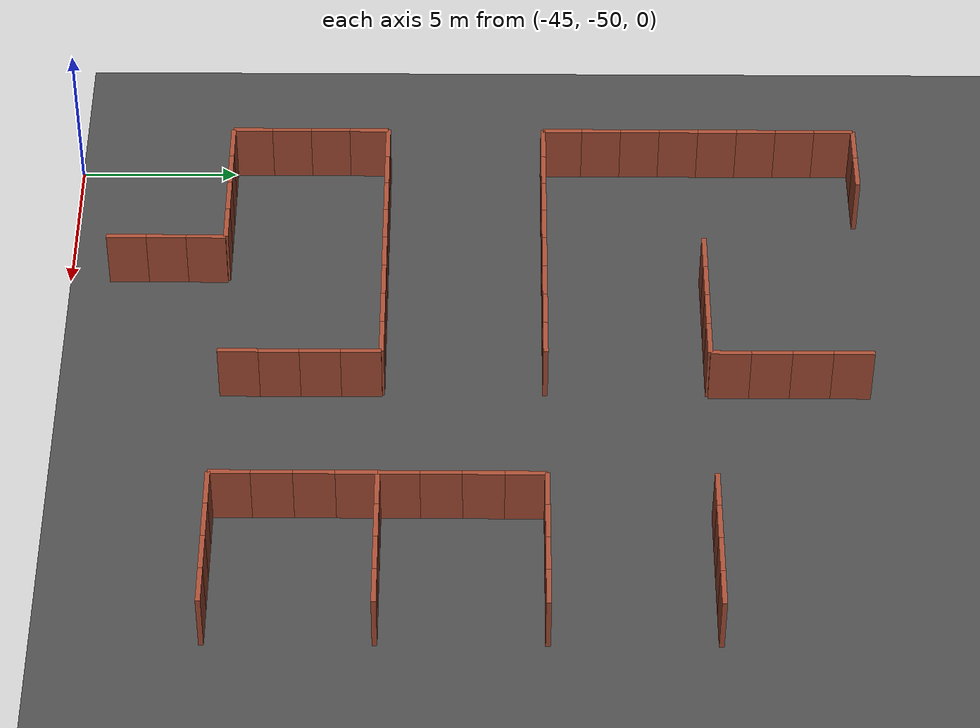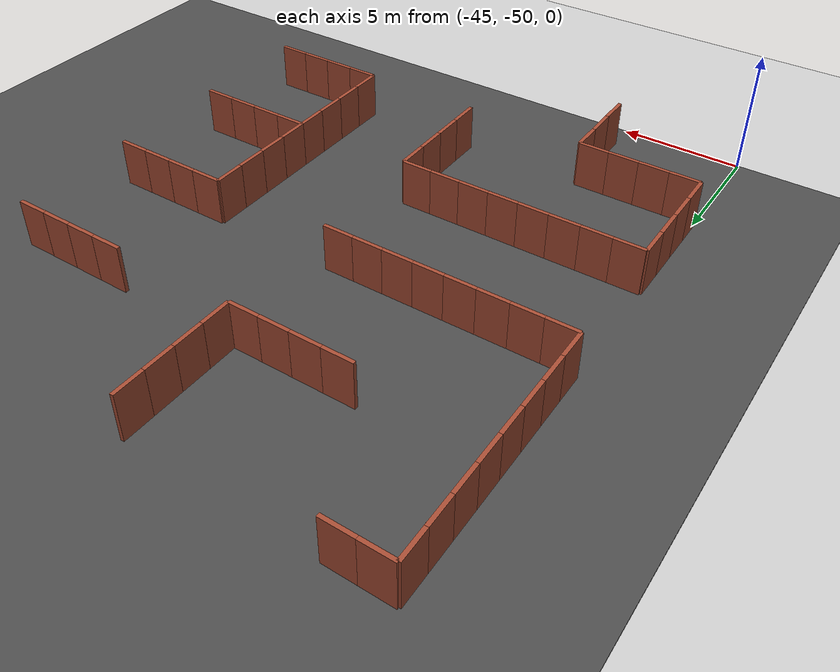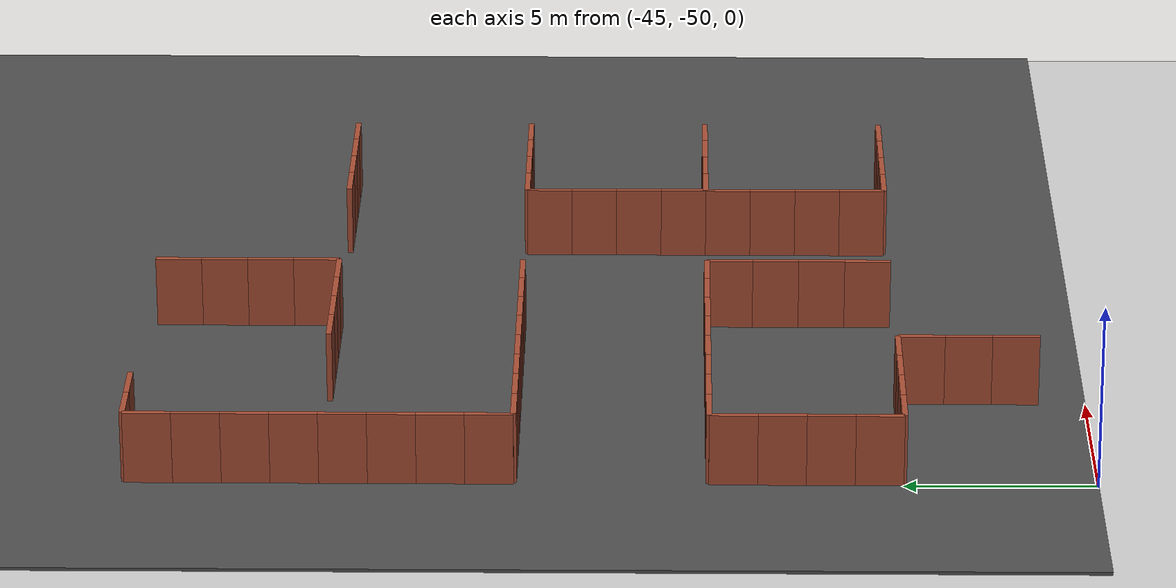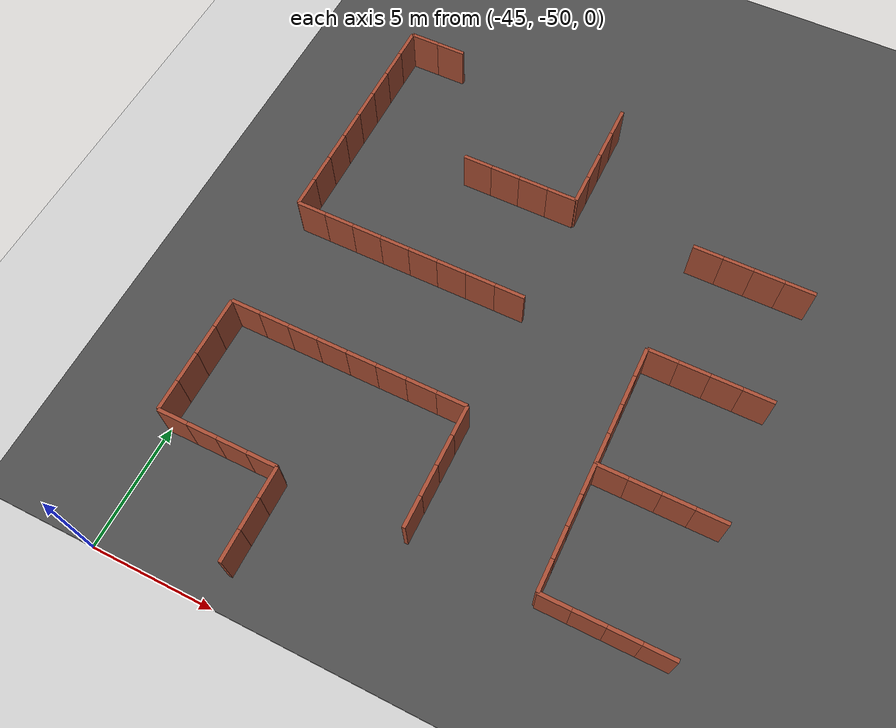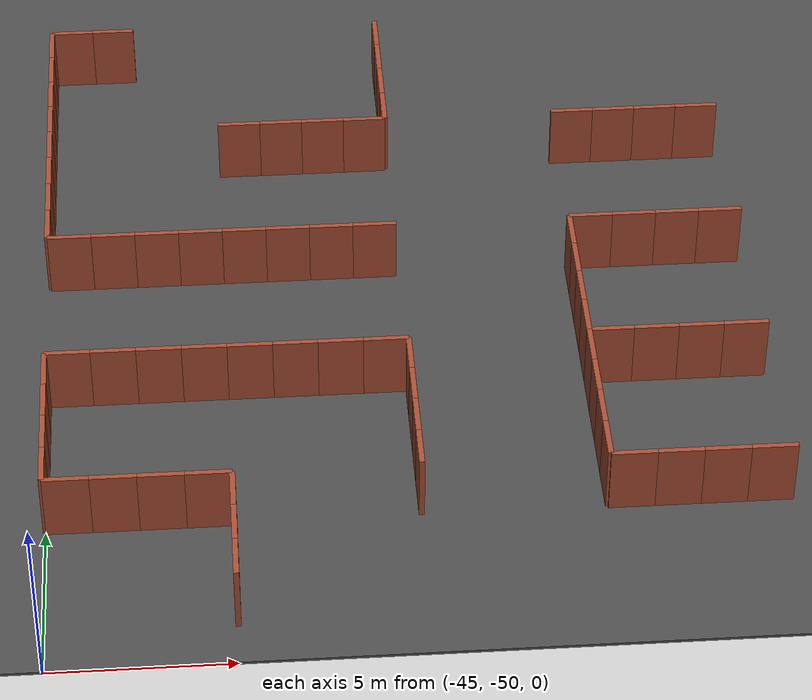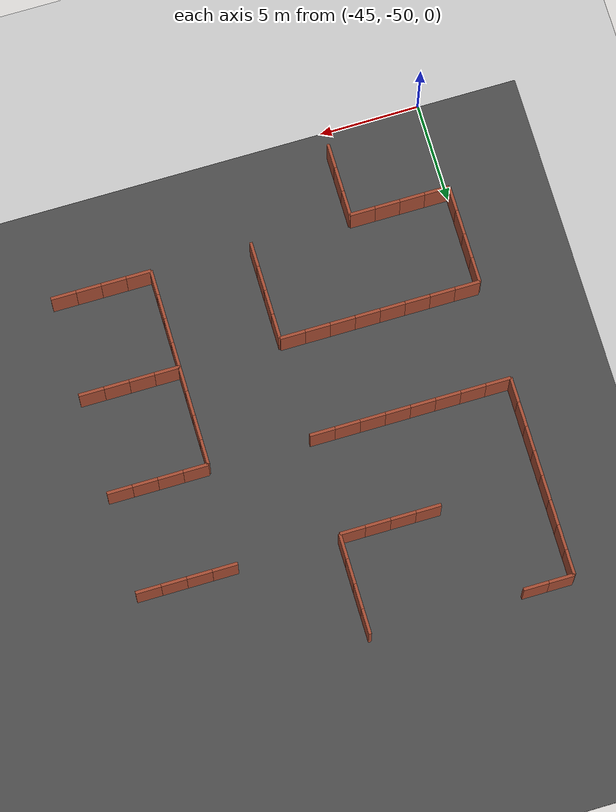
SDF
<sdf version="1.6">
 <world name="default">
  <model name="ground_plane">
   <static>1</static>
   <link name="link">
    <collision name="collision">
     <geometry><plane><normal>0 0 1</normal><size>100 100</size></plane></geometry>
     <surface><friction><ode><mu>100</mu><mu2>50</mu2></ode></friction></surface>
    </collision>
    <visual name="visual">
     <cast_shadows>0</cast_shadows>
     <geometry><plane><normal>0 0 1</normal><size>100 100</size></plane></geometry>
     <material>
      <script><uri>file://media/materials/scripts/gazebo.material</uri><name>Gazebo/Grey</name></script>
     </material>
    </visual>
   </link>
  </model>
  <model name="asphalt_plane">
   <static>1</static>
   <link name="link">
    <collision name="collision"><geometry><box><size>100 100 0.1</size></box></geometry></collision>
    <visual name="visual">
     <cast_shadows>0</cast_shadows>
     <geometry><box><size>100 100 0.1</size></box></geometry>
     <material>
      <script>
       <uri>model://asphalt_plane/materials/scripts</uri>
       <uri>model://asphalt_plane/materials/textures</uri>
       <name>vrc/asphalt</name>
      </script>
     </material>
    </visual>
   </link>
  </model>
  <model name="brick_wall_2_2_vertical1">
   <pose>-44.375 -45 0 0 -0 0</pose>
   <link name="Wall_0">
    <collision name="Wall_0_Collision">
     <geometry><box><size>1.25 0.15 2</size></box></geometry>
     <pose>0 0 1 0 -0 0</pose>
    </collision>
    <visual name="Wall_0_Visual">
     <pose>0 0 1 0 -0 0</pose>
     <geometry><box><size>1.25 0.15 2</size></box></geometry>
     <material>
      <script><uri>file://media/materials/scripts/gazebo.material</uri><name>Gazebo/Bricks</name></script>
      <ambient>1 1 1 1</ambient>
     </material>
     <meta><layer>0</layer></meta>
    </visual>
   </link>
   <static>1</static>
  </model>
  <model name="brick_wall_2_2_horizontal1">
   <pose>-45 -44.375 0 0 -0 1.5708</pose>
   <link name="Wall_0">
    <collision name="Wall_0_Collision">
     <geometry><box><size>1.25 0.15 2</size></box></geometry>
     <pose>0 0 1 0 -0 0</pose>
    </collision>
    <visual name="Wall_0_Visual">
     <pose>0 0 1 0 -0 0</pose>
     <geometry><box><size>1.25 0.15 2</size></box></geometry>
     <material>
      <script><uri>file://media/materials/scripts/gazebo.material</uri><name>Gazebo/Bricks</name></script>
      <ambient>1 1 1 1</ambient>
     </material>
     <meta><layer>0</layer></meta>
    </visual>
   </link>
   <static>1</static>
  </model>
  <model name="brick_wall_2_3_horizontal1">
   <pose>-45 -41.875 0 0 -0 1.5708</pose>
   <link name="Wall_0">
    <collision name="Wall_0_Collision">
     <geometry><box><size>1.25 0.15 2</size></box></geometry>
     <pose>0 0 1 0 -0 0</pose>
    </collision>
    <visual name="Wall_0_Visual">
     <pose>0 0 1 0 -0 0</pose>
     <geometry><box><size>1.25 0.15 2</size></box></geometry>
     <material>
      <script><uri>file://media/materials/scripts/gazebo.material</uri><name>Gazebo/Bricks</name></script>
      <ambient>1 1 1 1</ambient>
     </material>
     <meta><layer>0</layer></meta>
    </visual>
   </link>
   <static>1</static>
  </model>
  <model name="brick_wall_2_3_horizontal2">
   <pose>-45 -43.125 0 0 -0 1.5708</pose>
   <link name="Wall_0">
    <collision name="Wall_0_Collision">
     <geometry><box><size>1.25 0.15 2</size></box></geometry>
     <pose>0 0 1 0 -0 0</pose>
    </collision>
    <visual name="Wall_0_Visual">
     <pose>0 0 1 0 -0 0</pose>
     <geometry><box><size>1.25 0.15 2</size></box></geometry>
     <material>
      <script><uri>file://media/materials/scripts/gazebo.material</uri><name>Gazebo/Bricks</name></script>
      <ambient>1 1 1 1</ambient>
     </material>
     <meta><layer>0</layer></meta>
    </visual>
   </link>
   <static>1</static>
  </model>
  <model name="brick_wall_2_4_vertical1">
   <pose>-44.375 -40 0 0 -0 0</pose>
   <link name="Wall_0">
    <collision name="Wall_0_Collision">
     <geometry><box><size>1.25 0.15 2</size></box></geometry>
     <pose>0 0 1 0 -0 0</pose>
    </collision>
    <visual name="Wall_0_Visual">
     <pose>0 0 1 0 -0 0</pose>
     <geometry><box><size>1.25 0.15 2</size></box></geometry>
     <material>
      <script><uri>file://media/materials/scripts/gazebo.material</uri><name>Gazebo/Bricks</name></script>
      <ambient>1 1 1 1</ambient>
     </material>
     <meta><layer>0</layer></meta>
    </visual>
   </link>
   <static>1</static>
  </model>
  <model name="brick_wall_2_4_horizontal2">
   <pose>-45 -40.625 0 0 -0 1.5708</pose>
   <link name="Wall_0">
    <collision name="Wall_0_Collision">
     <geometry><box><size>1.25 0.15 2</size></box></geometry>
     <pose>0 0 1 0 -0 0</pose>
    </collision>
    <visual name="Wall_0_Visual">
     <pose>0 0 1 0 -0 0</pose>
     <geometry><box><size>1.25 0.15 2</size></box></geometry>
     <material>
      <script><uri>file://media/materials/scripts/gazebo.material</uri><name>Gazebo/Bricks</name></script>
      <ambient>1 1 1 1</ambient>
     </material>
     <meta><layer>0</layer></meta>
    </visual>
   </link>
   <static>1</static>
  </model>
  <model name="brick_wall_2_6_vertical1">
   <pose>-44.375 -35 0 0 -0 0</pose>
   <link name="Wall_0">
    <collision name="Wall_0_Collision">
     <geometry><box><size>1.25 0.15 2</size></box></geometry>
     <pose>0 0 1 0 -0 0</pose>
    </collision>
    <visual name="Wall_0_Visual">
     <pose>0 0 1 0 -0 0</pose>
     <geometry><box><size>1.25 0.15 2</size></box></geometry>
     <material>
      <script><uri>file://media/materials/scripts/gazebo.material</uri><name>Gazebo/Bricks</name></script>
      <ambient>1 1 1 1</ambient>
     </material>
     <meta><layer>0</layer></meta>
    </visual>
   </link>
   <static>1</static>
  </model>
  <model name="brick_wall_2_6_horizontal1">
   <pose>-45 -34.375 0 0 -0 1.5708</pose>
   <link name="Wall_0">
    <collision name="Wall_0_Collision">
     <geometry><box><size>1.25 0.15 2</size></box></geometry>
     <pose>0 0 1 0 -0 0</pose>
    </collision>
    <visual name="Wall_0_Visual">
     <pose>0 0 1 0 -0 0</pose>
     <geometry><box><size>1.25 0.15 2</size></box></geometry>
     <material>
      <script><uri>file://media/materials/scripts/gazebo.material</uri><name>Gazebo/Bricks</name></script>
      <ambient>1 1 1 1</ambient>
     </material>
     <meta><layer>0</layer></meta>
    </visual>
   </link>
   <static>1</static>
  </model>
  <model name="brick_wall_2_7_horizontal1">
   <pose>-45 -31.875 0 0 -0 1.5708</pose>
   <link name="Wall_0">
    <collision name="Wall_0_Collision">
     <geometry><box><size>1.25 0.15 2</size></box></geometry>
     <pose>0 0 1 0 -0 0</pose>
    </collision>
    <visual name="Wall_0_Visual">
     <pose>0 0 1 0 -0 0</pose>
     <geometry><box><size>1.25 0.15 2</size></box></geometry>
     <material>
      <script><uri>file://media/materials/scripts/gazebo.material</uri><name>Gazebo/Bricks</name></script>
      <ambient>1 1 1 1</ambient>
     </material>
     <meta><layer>0</layer></meta>
    </visual>
   </link>
   <static>1</static>
  </model>
  <model name="brick_wall_2_7_horizontal2">
   <pose>-45 -33.125 0 0 -0 1.5708</pose>
   <link name="Wall_0">
    <collision name="Wall_0_Collision">
     <geometry><box><size>1.25 0.15 2</size></box></geometry>
     <pose>0 0 1 0 -0 0</pose>
    </collision>
    <visual name="Wall_0_Visual">
     <pose>0 0 1 0 -0 0</pose>
     <geometry><box><size>1.25 0.15 2</size></box></geometry>
     <material>
      <script><uri>file://media/materials/scripts/gazebo.material</uri><name>Gazebo/Bricks</name></script>
      <ambient>1 1 1 1</ambient>
     </material>
     <meta><layer>0</layer></meta>
    </visual>
   </link>
   <static>1</static>
  </model>
  <model name="brick_wall_2_8_horizontal1">
   <pose>-45 -29.375 0 0 -0 1.5708</pose>
   <link name="Wall_0">
    <collision name="Wall_0_Collision">
     <geometry><box><size>1.25 0.15 2</size></box></geometry>
     <pose>0 0 1 0 -0 0</pose>
    </collision>
    <visual name="Wall_0_Visual">
     <pose>0 0 1 0 -0 0</pose>
     <geometry><box><size>1.25 0.15 2</size></box></geometry>
     <material>
      <script><uri>file://media/materials/scripts/gazebo.material</uri><name>Gazebo/Bricks</name></script>
      <ambient>1 1 1 1</ambient>
     </material>
     <meta><layer>0</layer></meta>
    </visual>
   </link>
   <static>1</static>
  </model>
  <model name="brick_wall_2_8_horizontal2">
   <pose>-45 -30.625 0 0 -0 1.5708</pose>
   <link name="Wall_0">
    <collision name="Wall_0_Collision">
     <geometry><box><size>1.25 0.15 2</size></box></geometry>
     <pose>0 0 1 0 -0 0</pose>
    </collision>
    <visual name="Wall_0_Visual">
     <pose>0 0 1 0 -0 0</pose>
     <geometry><box><size>1.25 0.15 2</size></box></geometry>
     <material>
      <script><uri>file://media/materials/scripts/gazebo.material</uri><name>Gazebo/Bricks</name></script>
      <ambient>1 1 1 1</ambient>
     </material>
     <meta><layer>0</layer></meta>
    </visual>
   </link>
   <static>1</static>
  </model>
  <model name="brick_wall_2_9_horizontal1">
   <pose>-45 -26.875 0 0 -0 1.5708</pose>
   <link name="Wall_0">
    <collision name="Wall_0_Collision">
     <geometry><box><size>1.25 0.15 2</size></box></geometry>
     <pose>0 0 1 0 -0 0</pose>
    </collision>
    <visual name="Wall_0_Visual">
     <pose>0 0 1 0 -0 0</pose>
     <geometry><box><size>1.25 0.15 2</size></box></geometry>
     <material>
      <script><uri>file://media/materials/scripts/gazebo.material</uri><name>Gazebo/Bricks</name></script>
      <ambient>1 1 1 1</ambient>
     </material>
     <meta><layer>0</layer></meta>
    </visual>
   </link>
   <static>1</static>
  </model>
  <model name="brick_wall_2_9_horizontal2">
   <pose>-45 -28.125 0 0 -0 1.5708</pose>
   <link name="Wall_0">
    <collision name="Wall_0_Collision">
     <geometry><box><size>1.25 0.15 2</size></box></geometry>
     <pose>0 0 1 0 -0 0</pose>
    </collision>
    <visual name="Wall_0_Visual">
     <pose>0 0 1 0 -0 0</pose>
     <geometry><box><size>1.25 0.15 2</size></box></geometry>
     <material>
      <script><uri>file://media/materials/scripts/gazebo.material</uri><name>Gazebo/Bricks</name></script>
      <ambient>1 1 1 1</ambient>
     </material>
     <meta><layer>0</layer></meta>
    </visual>
   </link>
   <static>1</static>
  </model>
  <model name="brick_wall_2_10_vertical1">
   <pose>-44.375 -25 0 0 -0 0</pose>
   <link name="Wall_0">
    <collision name="Wall_0_Collision">
     <geometry><box><size>1.25 0.15 2</size></box></geometry>
     <pose>0 0 1 0 -0 0</pose>
    </collision>
    <visual name="Wall_0_Visual">
     <pose>0 0 1 0 -0 0</pose>
     <geometry><box><size>1.25 0.15 2</size></box></geometry>
     <material>
      <script><uri>file://media/materials/scripts/gazebo.material</uri><name>Gazebo/Bricks</name></script>
      <ambient>1 1 1 1</ambient>
     </material>
     <meta><layer>0</layer></meta>
    </visual>
   </link>
   <static>1</static>
  </model>
  <model name="brick_wall_2_10_horizontal2">
   <pose>-45 -25.625 0 0 -0 1.5708</pose>
   <link name="Wall_0">
    <collision name="Wall_0_Collision">
     <geometry><box><size>1.25 0.15 2</size></box></geometry>
     <pose>0 0 1 0 -0 0</pose>
    </collision>
    <visual name="Wall_0_Visual">
     <pose>0 0 1 0 -0 0</pose>
     <geometry><box><size>1.25 0.15 2</size></box></geometry>
     <material>
      <script><uri>file://media/materials/scripts/gazebo.material</uri><name>Gazebo/Bricks</name></script>
      <ambient>1 1 1 1</ambient>
     </material>
     <meta><layer>0</layer></meta>
    </visual>
   </link>
   <static>1</static>
  </model>
  <model name="brick_wall_3_2_vertical1">
   <pose>-41.875 -45 0 0 -0 0</pose>
   <link name="Wall_0">
    <collision name="Wall_0_Collision">
     <geometry><box><size>1.25 0.15 2</size></box></geometry>
     <pose>0 0 1 0 -0 0</pose>
    </collision>
    <visual name="Wall_0_Visual">
     <pose>0 0 1 0 -0 0</pose>
     <geometry><box><size>1.25 0.15 2</size></box></geometry>
     <material>
      <script><uri>file://media/materials/scripts/gazebo.material</uri><name>Gazebo/Bricks</name></script>
      <ambient>1 1 1 1</ambient>
     </material>
     <meta><layer>0</layer></meta>
    </visual>
   </link>
   <static>1</static>
  </model>
  <model name="brick_wall_3_2_vertical2">
   <pose>-43.125 -45 0 0 -0 0</pose>
   <link name="Wall_0">
    <collision name="Wall_0_Collision">
     <geometry><box><size>1.25 0.15 2</size></box></geometry>
     <pose>0 0 1 0 -0 0</pose>
    </collision>
    <visual name="Wall_0_Visual">
     <pose>0 0 1 0 -0 0</pose>
     <geometry><box><size>1.25 0.15 2</size></box></geometry>
     <material>
      <script><uri>file://media/materials/scripts/gazebo.material</uri><name>Gazebo/Bricks</name></script>
      <ambient>1 1 1 1</ambient>
     </material>
     <meta><layer>0</layer></meta>
    </visual>
   </link>
   <static>1</static>
  </model>
  <model name="brick_wall_3_4_vertical1">
   <pose>-41.875 -40 0 0 -0 0</pose>
   <link name="Wall_0">
    <collision name="Wall_0_Collision">
     <geometry><box><size>1.25 0.15 2</size></box></geometry>
     <pose>0 0 1 0 -0 0</pose>
    </collision>
    <visual name="Wall_0_Visual">
     <pose>0 0 1 0 -0 0</pose>
     <geometry><box><size>1.25 0.15 2</size></box></geometry>
     <material>
      <script><uri>file://media/materials/scripts/gazebo.material</uri><name>Gazebo/Bricks</name></script>
      <ambient>1 1 1 1</ambient>
     </material>
     <meta><layer>0</layer></meta>
    </visual>
   </link>
   <static>1</static>
  </model>
  <model name="brick_wall_3_4_vertical2">
   <pose>-43.125 -40 0 0 -0 0</pose>
   <link name="Wall_0">
    <collision name="Wall_0_Collision">
     <geometry><box><size>1.25 0.15 2</size></box></geometry>
     <pose>0 0 1 0 -0 0</pose>
    </collision>
    <visual name="Wall_0_Visual">
     <pose>0 0 1 0 -0 0</pose>
     <geometry><box><size>1.25 0.15 2</size></box></geometry>
     <material>
      <script><uri>file://media/materials/scripts/gazebo.material</uri><name>Gazebo/Bricks</name></script>
      <ambient>1 1 1 1</ambient>
     </material>
     <meta><layer>0</layer></meta>
    </visual>
   </link>
   <static>1</static>
  </model>
  <model name="brick_wall_3_6_vertical1">
   <pose>-41.875 -35 0 0 -0 0</pose>
   <link name="Wall_0">
    <collision name="Wall_0_Collision">
     <geometry><box><size>1.25 0.15 2</size></box></geometry>
     <pose>0 0 1 0 -0 0</pose>
    </collision>
    <visual name="Wall_0_Visual">
     <pose>0 0 1 0 -0 0</pose>
     <geometry><box><size>1.25 0.15 2</size></box></geometry>
     <material>
      <script><uri>file://media/materials/scripts/gazebo.material</uri><name>Gazebo/Bricks</name></script>
      <ambient>1 1 1 1</ambient>
     </material>
     <meta><layer>0</layer></meta>
    </visual>
   </link>
   <static>1</static>
  </model>
  <model name="brick_wall_3_6_vertical2">
   <pose>-43.125 -35 0 0 -0 0</pose>
   <link name="Wall_0">
    <collision name="Wall_0_Collision">
     <geometry><box><size>1.25 0.15 2</size></box></geometry>
     <pose>0 0 1 0 -0 0</pose>
    </collision>
    <visual name="Wall_0_Visual">
     <pose>0 0 1 0 -0 0</pose>
     <geometry><box><size>1.25 0.15 2</size></box></geometry>
     <material>
      <script><uri>file://media/materials/scripts/gazebo.material</uri><name>Gazebo/Bricks</name></script>
      <ambient>1 1 1 1</ambient>
     </material>
     <meta><layer>0</layer></meta>
    </visual>
   </link>
   <static>1</static>
  </model>
  <model name="brick_wall_3_10_vertical2">
   <pose>-43.125 -25 0 0 -0 0</pose>
   <link name="Wall_0">
    <collision name="Wall_0_Collision">
     <geometry><box><size>1.25 0.15 2</size></box></geometry>
     <pose>0 0 1 0 -0 0</pose>
    </collision>
    <visual name="Wall_0_Visual">
     <pose>0 0 1 0 -0 0</pose>
     <geometry><box><size>1.25 0.15 2</size></box></geometry>
     <material>
      <script><uri>file://media/materials/scripts/gazebo.material</uri><name>Gazebo/Bricks</name></script>
      <ambient>1 1 1 1</ambient>
     </material>
     <meta><layer>0</layer></meta>
    </visual>
   </link>
   <static>1</static>
  </model>
  <model name="brick_wall_4_1_horizontal1">
   <pose>-40 -46.875 0 0 -0 1.5708</pose>
   <link name="Wall_0">
    <collision name="Wall_0_Collision">
     <geometry><box><size>1.25 0.15 2</size></box></geometry>
     <pose>0 0 1 0 -0 0</pose>
    </collision>
    <visual name="Wall_0_Visual">
     <pose>0 0 1 0 -0 0</pose>
     <geometry><box><size>1.25 0.15 2</size></box></geometry>
     <material>
      <script><uri>file://media/materials/scripts/gazebo.material</uri><name>Gazebo/Bricks</name></script>
      <ambient>1 1 1 1</ambient>
     </material>
     <meta><layer>0</layer></meta>
    </visual>
   </link>
   <static>1</static>
  </model>
  <model name="brick_wall_4_1_horizontal2">
   <pose>-40 -48.125 0 0 -0 1.5708</pose>
   <link name="Wall_0">
    <collision name="Wall_0_Collision">
     <geometry><box><size>1.25 0.15 2</size></box></geometry>
     <pose>0 0 1 0 -0 0</pose>
    </collision>
    <visual name="Wall_0_Visual">
     <pose>0 0 1 0 -0 0</pose>
     <geometry><box><size>1.25 0.15 2</size></box></geometry>
     <material>
      <script><uri>file://media/materials/scripts/gazebo.material</uri><name>Gazebo/Bricks</name></script>
      <ambient>1 1 1 1</ambient>
     </material>
     <meta><layer>0</layer></meta>
    </visual>
   </link>
   <static>1</static>
  </model>
  <model name="brick_wall_4_2_vertical2">
   <pose>-40.625 -45 0 0 -0 0</pose>
   <link name="Wall_0">
    <collision name="Wall_0_Collision">
     <geometry><box><size>1.25 0.15 2</size></box></geometry>
     <pose>0 0 1 0 -0 0</pose>
    </collision>
    <visual name="Wall_0_Visual">
     <pose>0 0 1 0 -0 0</pose>
     <geometry><box><size>1.25 0.15 2</size></box></geometry>
     <material>
      <script><uri>file://media/materials/scripts/gazebo.material</uri><name>Gazebo/Bricks</name></script>
      <ambient>1 1 1 1</ambient>
     </material>
     <meta><layer>0</layer></meta>
    </visual>
   </link>
   <static>1</static>
  </model>
  <model name="brick_wall_4_2_horizontal2">
   <pose>-40 -45.625 0 0 -0 1.5708</pose>
   <link name="Wall_0">
    <collision name="Wall_0_Collision">
     <geometry><box><size>1.25 0.15 2</size></box></geometry>
     <pose>0 0 1 0 -0 0</pose>
    </collision>
    <visual name="Wall_0_Visual">
     <pose>0 0 1 0 -0 0</pose>
     <geometry><box><size>1.25 0.15 2</size></box></geometry>
     <material>
      <script><uri>file://media/materials/scripts/gazebo.material</uri><name>Gazebo/Bricks</name></script>
      <ambient>1 1 1 1</ambient>
     </material>
     <meta><layer>0</layer></meta>
    </visual>
   </link>
   <static>1</static>
  </model>
  <model name="brick_wall_4_4_vertical1">
   <pose>-39.375 -40 0 0 -0 0</pose>
   <link name="Wall_0">
    <collision name="Wall_0_Collision">
     <geometry><box><size>1.25 0.15 2</size></box></geometry>
     <pose>0 0 1 0 -0 0</pose>
    </collision>
    <visual name="Wall_0_Visual">
     <pose>0 0 1 0 -0 0</pose>
     <geometry><box><size>1.25 0.15 2</size></box></geometry>
     <material>
      <script><uri>file://media/materials/scripts/gazebo.material</uri><name>Gazebo/Bricks</name></script>
      <ambient>1 1 1 1</ambient>
     </material>
     <meta><layer>0</layer></meta>
    </visual>
   </link>
   <static>1</static>
  </model>
  <model name="brick_wall_4_4_vertical2">
   <pose>-40.625 -40 0 0 -0 0</pose>
   <link name="Wall_0">
    <collision name="Wall_0_Collision">
     <geometry><box><size>1.25 0.15 2</size></box></geometry>
     <pose>0 0 1 0 -0 0</pose>
    </collision>
    <visual name="Wall_0_Visual">
     <pose>0 0 1 0 -0 0</pose>
     <geometry><box><size>1.25 0.15 2</size></box></geometry>
     <material>
      <script><uri>file://media/materials/scripts/gazebo.material</uri><name>Gazebo/Bricks</name></script>
      <ambient>1 1 1 1</ambient>
     </material>
     <meta><layer>0</layer></meta>
    </visual>
   </link>
   <static>1</static>
  </model>
  <model name="brick_wall_4_6_vertical1">
   <pose>-39.375 -35 0 0 -0 0</pose>
   <link name="Wall_0">
    <collision name="Wall_0_Collision">
     <geometry><box><size>1.25 0.15 2</size></box></geometry>
     <pose>0 0 1 0 -0 0</pose>
    </collision>
    <visual name="Wall_0_Visual">
     <pose>0 0 1 0 -0 0</pose>
     <geometry><box><size>1.25 0.15 2</size></box></geometry>
     <material>
      <script><uri>file://media/materials/scripts/gazebo.material</uri><name>Gazebo/Bricks</name></script>
      <ambient>1 1 1 1</ambient>
     </material>
     <meta><layer>0</layer></meta>
    </visual>
   </link>
   <static>1</static>
  </model>
  <model name="brick_wall_4_6_vertical2">
   <pose>-40.625 -35 0 0 -0 0</pose>
   <link name="Wall_0">
    <collision name="Wall_0_Collision">
     <geometry><box><size>1.25 0.15 2</size></box></geometry>
     <pose>0 0 1 0 -0 0</pose>
    </collision>
    <visual name="Wall_0_Visual">
     <pose>0 0 1 0 -0 0</pose>
     <geometry><box><size>1.25 0.15 2</size></box></geometry>
     <material>
      <script><uri>file://media/materials/scripts/gazebo.material</uri><name>Gazebo/Bricks</name></script>
      <ambient>1 1 1 1</ambient>
     </material>
     <meta><layer>0</layer></meta>
    </visual>
   </link>
   <static>1</static>
  </model>
  <model name="brick_wall_4_8_vertical1">
   <pose>-39.375 -30 0 0 -0 0</pose>
   <link name="Wall_0">
    <collision name="Wall_0_Collision">
     <geometry><box><size>1.25 0.15 2</size></box></geometry>
     <pose>0 0 1 0 -0 0</pose>
    </collision>
    <visual name="Wall_0_Visual">
     <pose>0 0 1 0 -0 0</pose>
     <geometry><box><size>1.25 0.15 2</size></box></geometry>
     <material>
      <script><uri>file://media/materials/scripts/gazebo.material</uri><name>Gazebo/Bricks</name></script>
      <ambient>1 1 1 1</ambient>
     </material>
     <meta><layer>0</layer></meta>
    </visual>
   </link>
   <static>1</static>
  </model>
  <model name="brick_wall_5_4_vertical1">
   <pose>-36.875 -40 0 0 -0 0</pose>
   <link name="Wall_0">
    <collision name="Wall_0_Collision">
     <geometry><box><size>1.25 0.15 2</size></box></geometry>
     <pose>0 0 1 0 -0 0</pose>
    </collision>
    <visual name="Wall_0_Visual">
     <pose>0 0 1 0 -0 0</pose>
     <geometry><box><size>1.25 0.15 2</size></box></geometry>
     <material>
      <script><uri>file://media/materials/scripts/gazebo.material</uri><name>Gazebo/Bricks</name></script>
      <ambient>1 1 1 1</ambient>
     </material>
     <meta><layer>0</layer></meta>
    </visual>
   </link>
   <static>1</static>
  </model>
  <model name="brick_wall_5_4_vertical2">
   <pose>-38.125 -40 0 0 -0 0</pose>
   <link name="Wall_0">
    <collision name="Wall_0_Collision">
     <geometry><box><size>1.25 0.15 2</size></box></geometry>
     <pose>0 0 1 0 -0 0</pose>
    </collision>
    <visual name="Wall_0_Visual">
     <pose>0 0 1 0 -0 0</pose>
     <geometry><box><size>1.25 0.15 2</size></box></geometry>
     <material>
      <script><uri>file://media/materials/scripts/gazebo.material</uri><name>Gazebo/Bricks</name></script>
      <ambient>1 1 1 1</ambient>
     </material>
     <meta><layer>0</layer></meta>
    </visual>
   </link>
   <static>1</static>
  </model>
  <model name="brick_wall_5_6_vertical1">
   <pose>-36.875 -35 0 0 -0 0</pose>
   <link name="Wall_0">
    <collision name="Wall_0_Collision">
     <geometry><box><size>1.25 0.15 2</size></box></geometry>
     <pose>0 0 1 0 -0 0</pose>
    </collision>
    <visual name="Wall_0_Visual">
     <pose>0 0 1 0 -0 0</pose>
     <geometry><box><size>1.25 0.15 2</size></box></geometry>
     <material>
      <script><uri>file://media/materials/scripts/gazebo.material</uri><name>Gazebo/Bricks</name></script>
      <ambient>1 1 1 1</ambient>
     </material>
     <meta><layer>0</layer></meta>
    </visual>
   </link>
   <static>1</static>
  </model>
  <model name="brick_wall_5_6_vertical2">
   <pose>-38.125 -35 0 0 -0 0</pose>
   <link name="Wall_0">
    <collision name="Wall_0_Collision">
     <geometry><box><size>1.25 0.15 2</size></box></geometry>
     <pose>0 0 1 0 -0 0</pose>
    </collision>
    <visual name="Wall_0_Visual">
     <pose>0 0 1 0 -0 0</pose>
     <geometry><box><size>1.25 0.15 2</size></box></geometry>
     <material>
      <script><uri>file://media/materials/scripts/gazebo.material</uri><name>Gazebo/Bricks</name></script>
      <ambient>1 1 1 1</ambient>
     </material>
     <meta><layer>0</layer></meta>
    </visual>
   </link>
   <static>1</static>
  </model>
  <model name="brick_wall_5_8_vertical1">
   <pose>-36.875 -30 0 0 -0 0</pose>
   <link name="Wall_0">
    <collision name="Wall_0_Collision">
     <geometry><box><size>1.25 0.15 2</size></box></geometry>
     <pose>0 0 1 0 -0 0</pose>
    </collision>
    <visual name="Wall_0_Visual">
     <pose>0 0 1 0 -0 0</pose>
     <geometry><box><size>1.25 0.15 2</size></box></geometry>
     <material>
      <script><uri>file://media/materials/scripts/gazebo.material</uri><name>Gazebo/Bricks</name></script>
      <ambient>1 1 1 1</ambient>
     </material>
     <meta><layer>0</layer></meta>
    </visual>
   </link>
   <static>1</static>
  </model>
  <model name="brick_wall_5_8_vertical2">
   <pose>-38.125 -30 0 0 -0 0</pose>
   <link name="Wall_0">
    <collision name="Wall_0_Collision">
     <geometry><box><size>1.25 0.15 2</size></box></geometry>
     <pose>0 0 1 0 -0 0</pose>
    </collision>
    <visual name="Wall_0_Visual">
     <pose>0 0 1 0 -0 0</pose>
     <geometry><box><size>1.25 0.15 2</size></box></geometry>
     <material>
      <script><uri>file://media/materials/scripts/gazebo.material</uri><name>Gazebo/Bricks</name></script>
      <ambient>1 1 1 1</ambient>
     </material>
     <meta><layer>0</layer></meta>
    </visual>
   </link>
   <static>1</static>
  </model>
  <model name="brick_wall_6_2_horizontal1">
   <pose>-35 -44.375 0 0 -0 1.5708</pose>
   <link name="Wall_0">
    <collision name="Wall_0_Collision">
     <geometry><box><size>1.25 0.15 2</size></box></geometry>
     <pose>0 0 1 0 -0 0</pose>
    </collision>
    <visual name="Wall_0_Visual">
     <pose>0 0 1 0 -0 0</pose>
     <geometry><box><size>1.25 0.15 2</size></box></geometry>
     <material>
      <script><uri>file://media/materials/scripts/gazebo.material</uri><name>Gazebo/Bricks</name></script>
      <ambient>1 1 1 1</ambient>
     </material>
     <meta><layer>0</layer></meta>
    </visual>
   </link>
   <static>1</static>
  </model>
  <model name="brick_wall_6_3_horizontal1">
   <pose>-35 -41.875 0 0 -0 1.5708</pose>
   <link name="Wall_0">
    <collision name="Wall_0_Collision">
     <geometry><box><size>1.25 0.15 2</size></box></geometry>
     <pose>0 0 1 0 -0 0</pose>
    </collision>
    <visual name="Wall_0_Visual">
     <pose>0 0 1 0 -0 0</pose>
     <geometry><box><size>1.25 0.15 2</size></box></geometry>
     <material>
      <script><uri>file://media/materials/scripts/gazebo.material</uri><name>Gazebo/Bricks</name></script>
      <ambient>1 1 1 1</ambient>
     </material>
     <meta><layer>0</layer></meta>
    </visual>
   </link>
   <static>1</static>
  </model>
  <model name="brick_wall_6_3_horizontal2">
   <pose>-35 -43.125 0 0 -0 1.5708</pose>
   <link name="Wall_0">
    <collision name="Wall_0_Collision">
     <geometry><box><size>1.25 0.15 2</size></box></geometry>
     <pose>0 0 1 0 -0 0</pose>
    </collision>
    <visual name="Wall_0_Visual">
     <pose>0 0 1 0 -0 0</pose>
     <geometry><box><size>1.25 0.15 2</size></box></geometry>
     <material>
      <script><uri>file://media/materials/scripts/gazebo.material</uri><name>Gazebo/Bricks</name></script>
      <ambient>1 1 1 1</ambient>
     </material>
     <meta><layer>0</layer></meta>
    </visual>
   </link>
   <static>1</static>
  </model>
  <model name="brick_wall_6_4_vertical2">
   <pose>-35.625 -40 0 0 -0 0</pose>
   <link name="Wall_0">
    <collision name="Wall_0_Collision">
     <geometry><box><size>1.25 0.15 2</size></box></geometry>
     <pose>0 0 1 0 -0 0</pose>
    </collision>
    <visual name="Wall_0_Visual">
     <pose>0 0 1 0 -0 0</pose>
     <geometry><box><size>1.25 0.15 2</size></box></geometry>
     <material>
      <script><uri>file://media/materials/scripts/gazebo.material</uri><name>Gazebo/Bricks</name></script>
      <ambient>1 1 1 1</ambient>
     </material>
     <meta><layer>0</layer></meta>
    </visual>
   </link>
   <static>1</static>
  </model>
  <model name="brick_wall_6_4_horizontal2">
   <pose>-35 -40.625 0 0 -0 1.5708</pose>
   <link name="Wall_0">
    <collision name="Wall_0_Collision">
     <geometry><box><size>1.25 0.15 2</size></box></geometry>
     <pose>0 0 1 0 -0 0</pose>
    </collision>
    <visual name="Wall_0_Visual">
     <pose>0 0 1 0 -0 0</pose>
     <geometry><box><size>1.25 0.15 2</size></box></geometry>
     <material>
      <script><uri>file://media/materials/scripts/gazebo.material</uri><name>Gazebo/Bricks</name></script>
      <ambient>1 1 1 1</ambient>
     </material>
     <meta><layer>0</layer></meta>
    </visual>
   </link>
   <static>1</static>
  </model>
  <model name="brick_wall_6_6_vertical2">
   <pose>-35.625 -35 0 0 -0 0</pose>
   <link name="Wall_0">
    <collision name="Wall_0_Collision">
     <geometry><box><size>1.25 0.15 2</size></box></geometry>
     <pose>0 0 1 0 -0 0</pose>
    </collision>
    <visual name="Wall_0_Visual">
     <pose>0 0 1 0 -0 0</pose>
     <geometry><box><size>1.25 0.15 2</size></box></geometry>
     <material>
      <script><uri>file://media/materials/scripts/gazebo.material</uri><name>Gazebo/Bricks</name></script>
      <ambient>1 1 1 1</ambient>
     </material>
     <meta><layer>0</layer></meta>
    </visual>
   </link>
   <static>1</static>
  </model>
  <model name="brick_wall_6_8_vertical2">
   <pose>-35.625 -30 0 0 -0 0</pose>
   <link name="Wall_0">
    <collision name="Wall_0_Collision">
     <geometry><box><size>1.25 0.15 2</size></box></geometry>
     <pose>0 0 1 0 -0 0</pose>
    </collision>
    <visual name="Wall_0_Visual">
     <pose>0 0 1 0 -0 0</pose>
     <geometry><box><size>1.25 0.15 2</size></box></geometry>
     <material>
      <script><uri>file://media/materials/scripts/gazebo.material</uri><name>Gazebo/Bricks</name></script>
      <ambient>1 1 1 1</ambient>
     </material>
     <meta><layer>0</layer></meta>
    </visual>
   </link>
   <static>1</static>
  </model>
  <model name="brick_wall_6_8_horizontal1">
   <pose>-35 -29.375 0 0 -0 1.5708</pose>
   <link name="Wall_0">
    <collision name="Wall_0_Collision">
     <geometry><box><size>1.25 0.15 2</size></box></geometry>
     <pose>0 0 1 0 -0 0</pose>
    </collision>
    <visual name="Wall_0_Visual">
     <pose>0 0 1 0 -0 0</pose>
     <geometry><box><size>1.25 0.15 2</size></box></geometry>
     <material>
      <script><uri>file://media/materials/scripts/gazebo.material</uri><name>Gazebo/Bricks</name></script>
      <ambient>1 1 1 1</ambient>
     </material>
     <meta><layer>0</layer></meta>
    </visual>
   </link>
   <static>1</static>
  </model>
  <model name="brick_wall_6_9_horizontal1">
   <pose>-35 -26.875 0 0 -0 1.5708</pose>
   <link name="Wall_0">
    <collision name="Wall_0_Collision">
     <geometry><box><size>1.25 0.15 2</size></box></geometry>
     <pose>0 0 1 0 -0 0</pose>
    </collision>
    <visual name="Wall_0_Visual">
     <pose>0 0 1 0 -0 0</pose>
     <geometry><box><size>1.25 0.15 2</size></box></geometry>
     <material>
      <script><uri>file://media/materials/scripts/gazebo.material</uri><name>Gazebo/Bricks</name></script>
      <ambient>1 1 1 1</ambient>
     </material>
     <meta><layer>0</layer></meta>
    </visual>
   </link>
   <static>1</static>
  </model>
  <model name="brick_wall_6_9_horizontal2">
   <pose>-35 -28.125 0 0 -0 1.5708</pose>
   <link name="Wall_0">
    <collision name="Wall_0_Collision">
     <geometry><box><size>1.25 0.15 2</size></box></geometry>
     <pose>0 0 1 0 -0 0</pose>
    </collision>
    <visual name="Wall_0_Visual">
     <pose>0 0 1 0 -0 0</pose>
     <geometry><box><size>1.25 0.15 2</size></box></geometry>
     <material>
      <script><uri>file://media/materials/scripts/gazebo.material</uri><name>Gazebo/Bricks</name></script>
      <ambient>1 1 1 1</ambient>
     </material>
     <meta><layer>0</layer></meta>
    </visual>
   </link>
   <static>1</static>
  </model>
  <model name="brick_wall_6_10_horizontal2">
   <pose>-35 -25.625 0 0 -0 1.5708</pose>
   <link name="Wall_0">
    <collision name="Wall_0_Collision">
     <geometry><box><size>1.25 0.15 2</size></box></geometry>
     <pose>0 0 1 0 -0 0</pose>
    </collision>
    <visual name="Wall_0_Visual">
     <pose>0 0 1 0 -0 0</pose>
     <geometry><box><size>1.25 0.15 2</size></box></geometry>
     <material>
      <script><uri>file://media/materials/scripts/gazebo.material</uri><name>Gazebo/Bricks</name></script>
      <ambient>1 1 1 1</ambient>
     </material>
     <meta><layer>0</layer></meta>
    </visual>
   </link>
   <static>1</static>
  </model>
  <model name="brick_wall_8_2_vertical1">
   <pose>-29.375 -45 0 0 -0 0</pose>
   <link name="Wall_0">
    <collision name="Wall_0_Collision">
     <geometry><box><size>1.25 0.15 2</size></box></geometry>
     <pose>0 0 1 0 -0 0</pose>
    </collision>
    <visual name="Wall_0_Visual">
     <pose>0 0 1 0 -0 0</pose>
     <geometry><box><size>1.25 0.15 2</size></box></geometry>
     <material>
      <script><uri>file://media/materials/scripts/gazebo.material</uri><name>Gazebo/Bricks</name></script>
      <ambient>1 1 1 1</ambient>
     </material>
     <meta><layer>0</layer></meta>
    </visual>
   </link>
   <static>1</static>
  </model>
  <model name="brick_wall_8_2_horizontal1">
   <pose>-30 -44.375 0 0 -0 1.5708</pose>
   <link name="Wall_0">
    <collision name="Wall_0_Collision">
     <geometry><box><size>1.25 0.15 2</size></box></geometry>
     <pose>0 0 1 0 -0 0</pose>
    </collision>
    <visual name="Wall_0_Visual">
     <pose>0 0 1 0 -0 0</pose>
     <geometry><box><size>1.25 0.15 2</size></box></geometry>
     <material>
      <script><uri>file://media/materials/scripts/gazebo.material</uri><name>Gazebo/Bricks</name></script>
      <ambient>1 1 1 1</ambient>
     </material>
     <meta><layer>0</layer></meta>
    </visual>
   </link>
   <static>1</static>
  </model>
  <model name="brick_wall_8_3_horizontal1">
   <pose>-30 -41.875 0 0 -0 1.5708</pose>
   <link name="Wall_0">
    <collision name="Wall_0_Collision">
     <geometry><box><size>1.25 0.15 2</size></box></geometry>
     <pose>0 0 1 0 -0 0</pose>
    </collision>
    <visual name="Wall_0_Visual">
     <pose>0 0 1 0 -0 0</pose>
     <geometry><box><size>1.25 0.15 2</size></box></geometry>
     <material>
      <script><uri>file://media/materials/scripts/gazebo.material</uri><name>Gazebo/Bricks</name></script>
      <ambient>1 1 1 1</ambient>
     </material>
     <meta><layer>0</layer></meta>
    </visual>
   </link>
   <static>1</static>
  </model>
  <model name="brick_wall_8_3_horizontal2">
   <pose>-30 -43.125 0 0 -0 1.5708</pose>
   <link name="Wall_0">
    <collision name="Wall_0_Collision">
     <geometry><box><size>1.25 0.15 2</size></box></geometry>
     <pose>0 0 1 0 -0 0</pose>
    </collision>
    <visual name="Wall_0_Visual">
     <pose>0 0 1 0 -0 0</pose>
     <geometry><box><size>1.25 0.15 2</size></box></geometry>
     <material>
      <script><uri>file://media/materials/scripts/gazebo.material</uri><name>Gazebo/Bricks</name></script>
      <ambient>1 1 1 1</ambient>
     </material>
     <meta><layer>0</layer></meta>
    </visual>
   </link>
   <static>1</static>
  </model>
  <model name="brick_wall_8_4_vertical1">
   <pose>-29.375 -40 0 0 -0 0</pose>
   <link name="Wall_0">
    <collision name="Wall_0_Collision">
     <geometry><box><size>1.25 0.15 2</size></box></geometry>
     <pose>0 0 1 0 -0 0</pose>
    </collision>
    <visual name="Wall_0_Visual">
     <pose>0 0 1 0 -0 0</pose>
     <geometry><box><size>1.25 0.15 2</size></box></geometry>
     <material>
      <script><uri>file://media/materials/scripts/gazebo.material</uri><name>Gazebo/Bricks</name></script>
      <ambient>1 1 1 1</ambient>
     </material>
     <meta><layer>0</layer></meta>
    </visual>
   </link>
   <static>1</static>
  </model>
  <model name="brick_wall_8_4_horizontal1">
   <pose>-30 -39.375 0 0 -0 1.5708</pose>
   <link name="Wall_0">
    <collision name="Wall_0_Collision">
     <geometry><box><size>1.25 0.15 2</size></box></geometry>
     <pose>0 0 1 0 -0 0</pose>
    </collision>
    <visual name="Wall_0_Visual">
     <pose>0 0 1 0 -0 0</pose>
     <geometry><box><size>1.25 0.15 2</size></box></geometry>
     <material>
      <script><uri>file://media/materials/scripts/gazebo.material</uri><name>Gazebo/Bricks</name></script>
      <ambient>1 1 1 1</ambient>
     </material>
     <meta><layer>0</layer></meta>
    </visual>
   </link>
   <static>1</static>
  </model>
  <model name="brick_wall_8_4_horizontal2">
   <pose>-30 -40.625 0 0 -0 1.5708</pose>
   <link name="Wall_0">
    <collision name="Wall_0_Collision">
     <geometry><box><size>1.25 0.15 2</size></box></geometry>
     <pose>0 0 1 0 -0 0</pose>
    </collision>
    <visual name="Wall_0_Visual">
     <pose>0 0 1 0 -0 0</pose>
     <geometry><box><size>1.25 0.15 2</size></box></geometry>
     <material>
      <script><uri>file://media/materials/scripts/gazebo.material</uri><name>Gazebo/Bricks</name></script>
      <ambient>1 1 1 1</ambient>
     </material>
     <meta><layer>0</layer></meta>
    </visual>
   </link>
   <static>1</static>
  </model>
  <model name="brick_wall_8_5_horizontal1">
   <pose>-30 -36.875 0 0 -0 1.5708</pose>
   <link name="Wall_0">
    <collision name="Wall_0_Collision">
     <geometry><box><size>1.25 0.15 2</size></box></geometry>
     <pose>0 0 1 0 -0 0</pose>
    </collision>
    <visual name="Wall_0_Visual">
     <pose>0 0 1 0 -0 0</pose>
     <geometry><box><size>1.25 0.15 2</size></box></geometry>
     <material>
      <script><uri>file://media/materials/scripts/gazebo.material</uri><name>Gazebo/Bricks</name></script>
      <ambient>1 1 1 1</ambient>
     </material>
     <meta><layer>0</layer></meta>
    </visual>
   </link>
   <static>1</static>
  </model>
  <model name="brick_wall_8_5_horizontal2">
   <pose>-30 -38.125 0 0 -0 1.5708</pose>
   <link name="Wall_0">
    <collision name="Wall_0_Collision">
     <geometry><box><size>1.25 0.15 2</size></box></geometry>
     <pose>0 0 1 0 -0 0</pose>
    </collision>
    <visual name="Wall_0_Visual">
     <pose>0 0 1 0 -0 0</pose>
     <geometry><box><size>1.25 0.15 2</size></box></geometry>
     <material>
      <script><uri>file://media/materials/scripts/gazebo.material</uri><name>Gazebo/Bricks</name></script>
      <ambient>1 1 1 1</ambient>
     </material>
     <meta><layer>0</layer></meta>
    </visual>
   </link>
   <static>1</static>
  </model>
  <model name="brick_wall_8_6_vertical1">
   <pose>-29.375 -35 0 0 -0 0</pose>
   <link name="Wall_0">
    <collision name="Wall_0_Collision">
     <geometry><box><size>1.25 0.15 2</size></box></geometry>
     <pose>0 0 1 0 -0 0</pose>
    </collision>
    <visual name="Wall_0_Visual">
     <pose>0 0 1 0 -0 0</pose>
     <geometry><box><size>1.25 0.15 2</size></box></geometry>
     <material>
      <script><uri>file://media/materials/scripts/gazebo.material</uri><name>Gazebo/Bricks</name></script>
      <ambient>1 1 1 1</ambient>
     </material>
     <meta><layer>0</layer></meta>
    </visual>
   </link>
   <static>1</static>
  </model>
  <model name="brick_wall_8_6_horizontal2">
   <pose>-30 -35.625 0 0 -0 1.5708</pose>
   <link name="Wall_0">
    <collision name="Wall_0_Collision">
     <geometry><box><size>1.25 0.15 2</size></box></geometry>
     <pose>0 0 1 0 -0 0</pose>
    </collision>
    <visual name="Wall_0_Visual">
     <pose>0 0 1 0 -0 0</pose>
     <geometry><box><size>1.25 0.15 2</size></box></geometry>
     <material>
      <script><uri>file://media/materials/scripts/gazebo.material</uri><name>Gazebo/Bricks</name></script>
      <ambient>1 1 1 1</ambient>
     </material>
     <meta><layer>0</layer></meta>
    </visual>
   </link>
   <static>1</static>
  </model>
  <model name="brick_wall_8_8_vertical1">
   <pose>-29.375 -30 0 0 -0 0</pose>
   <link name="Wall_0">
    <collision name="Wall_0_Collision">
     <geometry><box><size>1.25 0.15 2</size></box></geometry>
     <pose>0 0 1 0 -0 0</pose>
    </collision>
    <visual name="Wall_0_Visual">
     <pose>0 0 1 0 -0 0</pose>
     <geometry><box><size>1.25 0.15 2</size></box></geometry>
     <material>
      <script><uri>file://media/materials/scripts/gazebo.material</uri><name>Gazebo/Bricks</name></script>
      <ambient>1 1 1 1</ambient>
     </material>
     <meta><layer>0</layer></meta>
    </visual>
   </link>
   <static>1</static>
  </model>
  <model name="brick_wall_9_2_vertical1">
   <pose>-26.875 -45 0 0 -0 0</pose>
   <link name="Wall_0">
    <collision name="Wall_0_Collision">
     <geometry><box><size>1.25 0.15 2</size></box></geometry>
     <pose>0 0 1 0 -0 0</pose>
    </collision>
    <visual name="Wall_0_Visual">
     <pose>0 0 1 0 -0 0</pose>
     <geometry><box><size>1.25 0.15 2</size></box></geometry>
     <material>
      <script><uri>file://media/materials/scripts/gazebo.material</uri><name>Gazebo/Bricks</name></script>
      <ambient>1 1 1 1</ambient>
     </material>
     <meta><layer>0</layer></meta>
    </visual>
   </link>
   <static>1</static>
  </model>
  <model name="brick_wall_9_2_vertical2">
   <pose>-28.125 -45 0 0 -0 0</pose>
   <link name="Wall_0">
    <collision name="Wall_0_Collision">
     <geometry><box><size>1.25 0.15 2</size></box></geometry>
     <pose>0 0 1 0 -0 0</pose>
    </collision>
    <visual name="Wall_0_Visual">
     <pose>0 0 1 0 -0 0</pose>
     <geometry><box><size>1.25 0.15 2</size></box></geometry>
     <material>
      <script><uri>file://media/materials/scripts/gazebo.material</uri><name>Gazebo/Bricks</name></script>
      <ambient>1 1 1 1</ambient>
     </material>
     <meta><layer>0</layer></meta>
    </visual>
   </link>
   <static>1</static>
  </model>
  <model name="brick_wall_9_4_vertical1">
   <pose>-26.875 -40 0 0 -0 0</pose>
   <link name="Wall_0">
    <collision name="Wall_0_Collision">
     <geometry><box><size>1.25 0.15 2</size></box></geometry>
     <pose>0 0 1 0 -0 0</pose>
    </collision>
    <visual name="Wall_0_Visual">
     <pose>0 0 1 0 -0 0</pose>
     <geometry><box><size>1.25 0.15 2</size></box></geometry>
     <material>
      <script><uri>file://media/materials/scripts/gazebo.material</uri><name>Gazebo/Bricks</name></script>
      <ambient>1 1 1 1</ambient>
     </material>
     <meta><layer>0</layer></meta>
    </visual>
   </link>
   <static>1</static>
  </model>
  <model name="brick_wall_9_4_vertical2">
   <pose>-28.125 -40 0 0 -0 0</pose>
   <link name="Wall_0">
    <collision name="Wall_0_Collision">
     <geometry><box><size>1.25 0.15 2</size></box></geometry>
     <pose>0 0 1 0 -0 0</pose>
    </collision>
    <visual name="Wall_0_Visual">
     <pose>0 0 1 0 -0 0</pose>
     <geometry><box><size>1.25 0.15 2</size></box></geometry>
     <material>
      <script><uri>file://media/materials/scripts/gazebo.material</uri><name>Gazebo/Bricks</name></script>
      <ambient>1 1 1 1</ambient>
     </material>
     <meta><layer>0</layer></meta>
    </visual>
   </link>
   <static>1</static>
  </model>
  <model name="brick_wall_9_6_vertical1">
   <pose>-26.875 -35 0 0 -0 0</pose>
   <link name="Wall_0">
    <collision name="Wall_0_Collision">
     <geometry><box><size>1.25 0.15 2</size></box></geometry>
     <pose>0 0 1 0 -0 0</pose>
    </collision>
    <visual name="Wall_0_Visual">
     <pose>0 0 1 0 -0 0</pose>
     <geometry><box><size>1.25 0.15 2</size></box></geometry>
     <material>
      <script><uri>file://media/materials/scripts/gazebo.material</uri><name>Gazebo/Bricks</name></script>
      <ambient>1 1 1 1</ambient>
     </material>
     <meta><layer>0</layer></meta>
    </visual>
   </link>
   <static>1</static>
  </model>
  <model name="brick_wall_9_6_vertical2">
   <pose>-28.125 -35 0 0 -0 0</pose>
   <link name="Wall_0">
    <collision name="Wall_0_Collision">
     <geometry><box><size>1.25 0.15 2</size></box></geometry>
     <pose>0 0 1 0 -0 0</pose>
    </collision>
    <visual name="Wall_0_Visual">
     <pose>0 0 1 0 -0 0</pose>
     <geometry><box><size>1.25 0.15 2</size></box></geometry>
     <material>
      <script><uri>file://media/materials/scripts/gazebo.material</uri><name>Gazebo/Bricks</name></script>
      <ambient>1 1 1 1</ambient>
     </material>
     <meta><layer>0</layer></meta>
    </visual>
   </link>
   <static>1</static>
  </model>
  <model name="brick_wall_9_8_vertical1">
   <pose>-26.875 -30 0 0 -0 0</pose>
   <link name="Wall_0">
    <collision name="Wall_0_Collision">
     <geometry><box><size>1.25 0.15 2</size></box></geometry>
     <pose>0 0 1 0 -0 0</pose>
    </collision>
    <visual name="Wall_0_Visual">
     <pose>0 0 1 0 -0 0</pose>
     <geometry><box><size>1.25 0.15 2</size></box></geometry>
     <material>
      <script><uri>file://media/materials/scripts/gazebo.material</uri><name>Gazebo/Bricks</name></script>
      <ambient>1 1 1 1</ambient>
     </material>
     <meta><layer>0</layer></meta>
    </visual>
   </link>
   <static>1</static>
  </model>
  <model name="brick_wall_9_8_vertical2">
   <pose>-28.125 -30 0 0 -0 0</pose>
   <link name="Wall_0">
    <collision name="Wall_0_Collision">
     <geometry><box><size>1.25 0.15 2</size></box></geometry>
     <pose>0 0 1 0 -0 0</pose>
    </collision>
    <visual name="Wall_0_Visual">
     <pose>0 0 1 0 -0 0</pose>
     <geometry><box><size>1.25 0.15 2</size></box></geometry>
     <material>
      <script><uri>file://media/materials/scripts/gazebo.material</uri><name>Gazebo/Bricks</name></script>
      <ambient>1 1 1 1</ambient>
     </material>
     <meta><layer>0</layer></meta>
    </visual>
   </link>
   <static>1</static>
  </model>
  <model name="brick_wall_10_2_vertical2">
   <pose>-25.625 -45 0 0 -0 0</pose>
   <link name="Wall_0">
    <collision name="Wall_0_Collision">
     <geometry><box><size>1.25 0.15 2</size></box></geometry>
     <pose>0 0 1 0 -0 0</pose>
    </collision>
    <visual name="Wall_0_Visual">
     <pose>0 0 1 0 -0 0</pose>
     <geometry><box><size>1.25 0.15 2</size></box></geometry>
     <material>
      <script><uri>file://media/materials/scripts/gazebo.material</uri><name>Gazebo/Bricks</name></script>
      <ambient>1 1 1 1</ambient>
     </material>
     <meta><layer>0</layer></meta>
    </visual>
   </link>
   <static>1</static>
  </model>
  <model name="brick_wall_10_4_vertical2">
   <pose>-25.625 -40 0 0 -0 0</pose>
   <link name="Wall_0">
    <collision name="Wall_0_Collision">
     <geometry><box><size>1.25 0.15 2</size></box></geometry>
     <pose>0 0 1 0 -0 0</pose>
    </collision>
    <visual name="Wall_0_Visual">
     <pose>0 0 1 0 -0 0</pose>
     <geometry><box><size>1.25 0.15 2</size></box></geometry>
     <material>
      <script><uri>file://media/materials/scripts/gazebo.material</uri><name>Gazebo/Bricks</name></script>
      <ambient>1 1 1 1</ambient>
     </material>
     <meta><layer>0</layer></meta>
    </visual>
   </link>
   <static>1</static>
  </model>
  <model name="brick_wall_10_6_vertical2">
   <pose>-25.625 -35 0 0 -0 0</pose>
   <link name="Wall_0">
    <collision name="Wall_0_Collision">
     <geometry><box><size>1.25 0.15 2</size></box></geometry>
     <pose>0 0 1 0 -0 0</pose>
    </collision>
    <visual name="Wall_0_Visual">
     <pose>0 0 1 0 -0 0</pose>
     <geometry><box><size>1.25 0.15 2</size></box></geometry>
     <material>
      <script><uri>file://media/materials/scripts/gazebo.material</uri><name>Gazebo/Bricks</name></script>
      <ambient>1 1 1 1</ambient>
     </material>
     <meta><layer>0</layer></meta>
    </visual>
   </link>
   <static>1</static>
  </model>
  <model name="brick_wall_10_8_vertical2">
   <pose>-25.625 -30 0 0 -0 0</pose>
   <link name="Wall_0">
    <collision name="Wall_0_Collision">
     <geometry><box><size>1.25 0.15 2</size></box></geometry>
     <pose>0 0 1 0 -0 0</pose>
    </collision>
    <visual name="Wall_0_Visual">
     <pose>0 0 1 0 -0 0</pose>
     <geometry><box><size>1.25 0.15 2</size></box></geometry>
     <material>
      <script><uri>file://media/materials/scripts/gazebo.material</uri><name>Gazebo/Bricks</name></script>
      <ambient>1 1 1 1</ambient>
     </material>
     <meta><layer>0</layer></meta>
    </visual>
   </link>
   <static>1</static>
  </model>
 </world>
</sdf>
